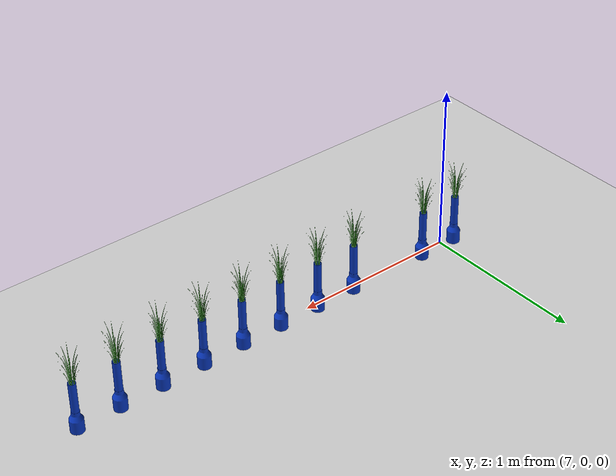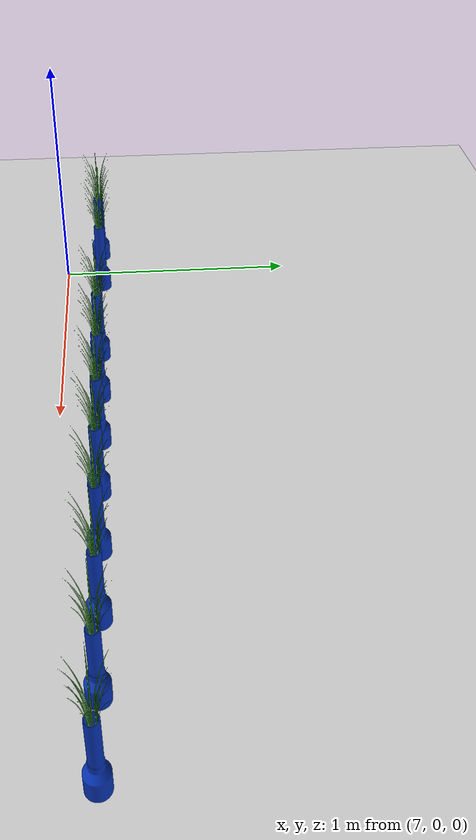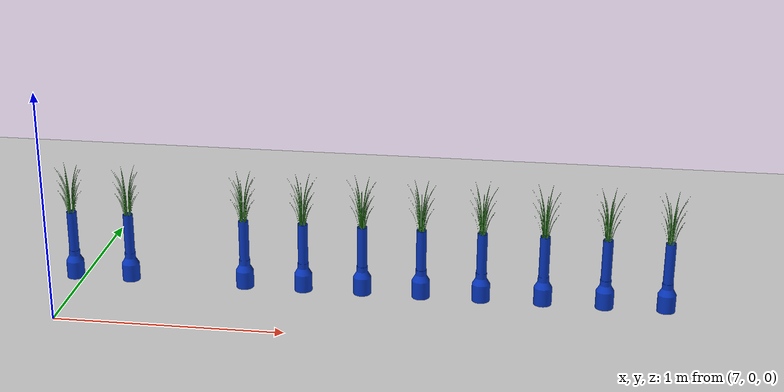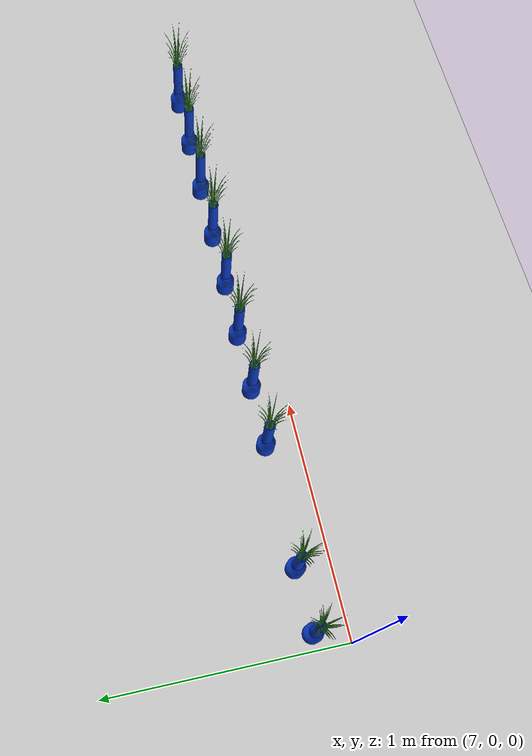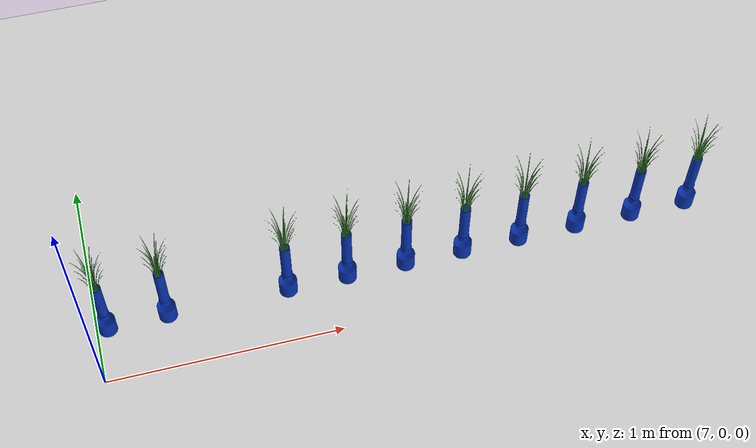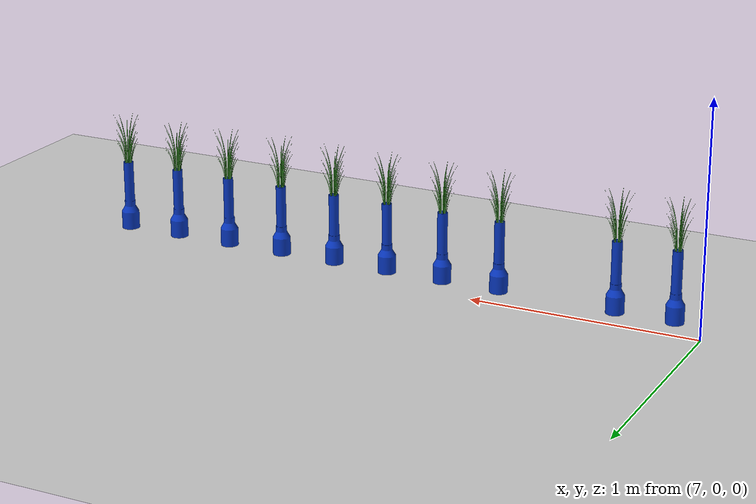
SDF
<sdf version="1.7">
 <world name="default">
  <model name="ground_plane">
   <static>1</static>
   <link name="link">
    <collision name="collision">
     <geometry><plane><normal>0 0 1</normal><size>100 100</size></plane></geometry>
     <surface>
      <contact><collide_bitmask>65535</collide_bitmask></contact>
      <friction><ode><mu>100</mu><mu2>50</mu2></ode></friction>
     </surface>
    </collision>
    <visual name="visual">
     <cast_shadows>0</cast_shadows>
     <geometry><plane><normal>0 0 1</normal><size>100 100</size></plane></geometry>
     <material>
      <script><uri>file://media/materials/scripts/gazebo.material</uri><name>Gazebo/Grey</name></script>
     </material>
    </visual>
   </link>
  </model>
  <model name="seed_blue">
   <link name="link_1">
    <inertial>
     <mass>1</mass>
     <inertia>
      <ixx>0.166667</ixx>
      <ixy>0</ixy>
      <ixz>0</ixz>
      <iyy>0.166667</iyy>
      <iyz>0</iyz>
      <izz>0.166667</izz>
     </inertia>
    </inertial>
    <visual name="visual">
     <geometry>
      <mesh>
       <uri>/home/entity014/abu2024_ws/src/abu_description/worlds/seed_blue.dae</uri>
       <scale>1 1 1</scale>
      </mesh>
     </geometry>
    </visual>
    <collision name="collision">
     <geometry>
      <mesh>
       <uri>/home/entity014/abu2024_ws/src/abu_description/worlds/seed_blue.dae</uri>
       <scale>1 1 1</scale>
      </mesh>
     </geometry>
     <surface>
      <friction>
       <ode><mu>1</mu><mu2>1</mu2><fdir1>0 0 0</fdir1><slip1>0</slip1><slip2>0</slip2></ode>
       <torsional>
        <coefficient>1</coefficient>
        <patch_radius>0</patch_radius>
        <surface_radius>0</surface_radius>
        <use_patch_radius>1</use_patch_radius>
        <ode><slip>0</slip></ode>
       </torsional>
      </friction>
      <bounce><restitution_coefficient>0</restitution_coefficient><threshold>1e+06</threshold></bounce>
      <contact>
       <collide_without_contact>0</collide_without_contact>
       <collide_without_contact_bitmask>1</collide_without_contact_bitmask>
       <collide_bitmask>1</collide_bitmask>
       <ode>
        <soft_cfm>0</soft_cfm>
        <soft_erp>0.2</soft_erp>
        <kp>1e+13</kp>
        <kd>1</kd>
        <max_vel>0.01</max_vel>
        <min_depth>0</min_depth>
       </ode>
       <bullet>
        <split_impulse>1</split_impulse>
        <split_impulse_penetration_threshold>-0.01</split_impulse_penetration_threshold>
        <soft_cfm>0</soft_cfm>
        <soft_erp>0.2</soft_erp>
        <kp>1e+13</kp>
        <kd>1</kd>
       </bullet>
      </contact>
     </surface>
    </collision>
   </link>
   <static>0</static>
   <pose>7.05811 0.163128 0.244369 6e-06 4e-06 0.000181</pose>
  </model>
  <model name="seed_blue_0">
   <link name="link_1">
    <inertial>
     <mass>1</mass>
     <inertia>
      <ixx>0.166667</ixx>
      <ixy>0</ixy>
      <ixz>0</ixz>
      <iyy>0.166667</iyy>
      <iyz>0</iyz>
      <izz>0.166667</izz>
     </inertia>
    </inertial>
    <visual name="visual">
     <geometry>
      <mesh>
       <uri>/home/entity014/abu2024_ws/src/abu_description/worlds/seed_blue.dae</uri>
       <scale>1 1 1</scale>
      </mesh>
     </geometry>
    </visual>
    <collision name="collision">
     <geometry>
      <mesh>
       <uri>/home/entity014/abu2024_ws/src/abu_description/worlds/seed_blue.dae</uri>
       <scale>1 1 1</scale>
      </mesh>
     </geometry>
     <surface>
      <friction>
       <ode><mu>1</mu><mu2>1</mu2><fdir1>0 0 0</fdir1><slip1>0</slip1><slip2>0</slip2></ode>
       <torsional>
        <coefficient>1</coefficient>
        <patch_radius>0</patch_radius>
        <surface_radius>0</surface_radius>
        <use_patch_radius>1</use_patch_radius>
        <ode><slip>0</slip></ode>
       </torsional>
      </friction>
      <bounce><restitution_coefficient>0</restitution_coefficient><threshold>1e+06</threshold></bounce>
      <contact>
       <collide_without_contact>0</collide_without_contact>
       <collide_without_contact_bitmask>1</collide_without_contact_bitmask>
       <collide_bitmask>1</collide_bitmask>
       <ode>
        <soft_cfm>0</soft_cfm>
        <soft_erp>0.2</soft_erp>
        <kp>1e+13</kp>
        <kd>1</kd>
        <max_vel>0.01</max_vel>
        <min_depth>0</min_depth>
       </ode>
       <bullet>
        <split_impulse>1</split_impulse>
        <split_impulse_penetration_threshold>-0.01</split_impulse_penetration_threshold>
        <soft_cfm>0</soft_cfm>
        <soft_erp>0.2</soft_erp>
        <kp>1e+13</kp>
        <kd>1</kd>
       </bullet>
      </contact>
     </surface>
    </collision>
   </link>
   <static>0</static>
   <pose>7.30361 0.167483 0.24437 1e-05 -1e-05 -0.016875</pose>
  </model>
  <model name="seed_blue_2">
   <link name="link_1">
    <inertial>
     <mass>1</mass>
     <inertia>
      <ixx>0.166667</ixx>
      <ixy>0</ixy>
      <ixz>0</ixz>
      <iyy>0.166667</iyy>
      <iyz>0</iyz>
      <izz>0.166667</izz>
     </inertia>
    </inertial>
    <visual name="visual">
     <geometry>
      <mesh>
       <uri>/home/entity014/abu2024_ws/src/abu_description/worlds/seed_blue.dae</uri>
       <scale>1 1 1</scale>
      </mesh>
     </geometry>
    </visual>
    <collision name="collision">
     <geometry>
      <mesh>
       <uri>/home/entity014/abu2024_ws/src/abu_description/worlds/seed_blue.dae</uri>
       <scale>1 1 1</scale>
      </mesh>
     </geometry>
     <surface>
      <friction>
       <ode><mu>1</mu><mu2>1</mu2><fdir1>0 0 0</fdir1><slip1>0</slip1><slip2>0</slip2></ode>
       <torsional>
        <coefficient>1</coefficient>
        <patch_radius>0</patch_radius>
        <surface_radius>0</surface_radius>
        <use_patch_radius>1</use_patch_radius>
        <ode><slip>0</slip></ode>
       </torsional>
      </friction>
      <bounce><restitution_coefficient>0</restitution_coefficient><threshold>1e+06</threshold></bounce>
      <contact>
       <collide_without_contact>0</collide_without_contact>
       <collide_without_contact_bitmask>1</collide_without_contact_bitmask>
       <collide_bitmask>1</collide_bitmask>
       <ode>
        <soft_cfm>0</soft_cfm>
        <soft_erp>0.2</soft_erp>
        <kp>1e+13</kp>
        <kd>1</kd>
        <max_vel>0.01</max_vel>
        <min_depth>0</min_depth>
       </ode>
       <bullet>
        <split_impulse>1</split_impulse>
        <split_impulse_penetration_threshold>-0.01</split_impulse_penetration_threshold>
        <soft_cfm>0</soft_cfm>
        <soft_erp>0.2</soft_erp>
        <kp>1e+13</kp>
        <kd>1</kd>
       </bullet>
      </contact>
     </surface>
    </collision>
   </link>
   <static>0</static>
   <pose>7.80373 0.163084 0.244369 4e-06 1e-06 -6.5e-05</pose>
  </model>
  <model name="seed_blue_3">
   <link name="link_1">
    <inertial>
     <mass>1</mass>
     <inertia>
      <ixx>0.166667</ixx>
      <ixy>0</ixy>
      <ixz>0</ixz>
      <iyy>0.166667</iyy>
      <iyz>0</iyz>
      <izz>0.166667</izz>
     </inertia>
    </inertial>
    <visual name="visual">
     <geometry>
      <mesh>
       <uri>/home/entity014/abu2024_ws/src/abu_description/worlds/seed_blue.dae</uri>
       <scale>1 1 1</scale>
      </mesh>
     </geometry>
    </visual>
    <collision name="collision">
     <geometry>
      <mesh>
       <uri>/home/entity014/abu2024_ws/src/abu_description/worlds/seed_blue.dae</uri>
       <scale>1 1 1</scale>
      </mesh>
     </geometry>
     <surface>
      <friction>
       <ode><mu>1</mu><mu2>1</mu2><fdir1>0 0 0</fdir1><slip1>0</slip1><slip2>0</slip2></ode>
       <torsional>
        <coefficient>1</coefficient>
        <patch_radius>0</patch_radius>
        <surface_radius>0</surface_radius>
        <use_patch_radius>1</use_patch_radius>
        <ode><slip>0</slip></ode>
       </torsional>
      </friction>
      <bounce><restitution_coefficient>0</restitution_coefficient><threshold>1e+06</threshold></bounce>
      <contact>
       <collide_without_contact>0</collide_without_contact>
       <collide_without_contact_bitmask>1</collide_without_contact_bitmask>
       <collide_bitmask>1</collide_bitmask>
       <ode>
        <soft_cfm>0</soft_cfm>
        <soft_erp>0.2</soft_erp>
        <kp>1e+13</kp>
        <kd>1</kd>
        <max_vel>0.01</max_vel>
        <min_depth>0</min_depth>
       </ode>
       <bullet>
        <split_impulse>1</split_impulse>
        <split_impulse_penetration_threshold>-0.01</split_impulse_penetration_threshold>
        <soft_cfm>0</soft_cfm>
        <soft_erp>0.2</soft_erp>
        <kp>1e+13</kp>
        <kd>1</kd>
       </bullet>
      </contact>
     </surface>
    </collision>
   </link>
   <static>0</static>
   <pose>8.05521 0.164025 0.244369 2e-06 -8e-06 7.7e-05</pose>
  </model>
  <model name="seed_blue_4">
   <link name="link_1">
    <inertial>
     <mass>1</mass>
     <inertia>
      <ixx>0.166667</ixx>
      <ixy>0</ixy>
      <ixz>0</ixz>
      <iyy>0.166667</iyy>
      <iyz>0</iyz>
      <izz>0.166667</izz>
     </inertia>
    </inertial>
    <visual name="visual">
     <geometry>
      <mesh>
       <uri>/home/entity014/abu2024_ws/src/abu_description/worlds/seed_blue.dae</uri>
       <scale>1 1 1</scale>
      </mesh>
     </geometry>
    </visual>
    <collision name="collision">
     <geometry>
      <mesh>
       <uri>/home/entity014/abu2024_ws/src/abu_description/worlds/seed_blue.dae</uri>
       <scale>1 1 1</scale>
      </mesh>
     </geometry>
     <surface>
      <friction>
       <ode><mu>1</mu><mu2>1</mu2><fdir1>0 0 0</fdir1><slip1>0</slip1><slip2>0</slip2></ode>
       <torsional>
        <coefficient>1</coefficient>
        <patch_radius>0</patch_radius>
        <surface_radius>0</surface_radius>
        <use_patch_radius>1</use_patch_radius>
        <ode><slip>0</slip></ode>
       </torsional>
      </friction>
      <bounce><restitution_coefficient>0</restitution_coefficient><threshold>1e+06</threshold></bounce>
      <contact>
       <collide_without_contact>0</collide_without_contact>
       <collide_without_contact_bitmask>1</collide_without_contact_bitmask>
       <collide_bitmask>1</collide_bitmask>
       <ode>
        <soft_cfm>0</soft_cfm>
        <soft_erp>0.2</soft_erp>
        <kp>1e+13</kp>
        <kd>1</kd>
        <max_vel>0.01</max_vel>
        <min_depth>0</min_depth>
       </ode>
       <bullet>
        <split_impulse>1</split_impulse>
        <split_impulse_penetration_threshold>-0.01</split_impulse_penetration_threshold>
        <soft_cfm>0</soft_cfm>
        <soft_erp>0.2</soft_erp>
        <kp>1e+13</kp>
        <kd>1</kd>
       </bullet>
      </contact>
     </surface>
    </collision>
   </link>
   <static>0</static>
   <pose>8.30615 0.165431 0.24437 -4e-06 -1.2e-05 -0.000523</pose>
  </model>
  <model name="seed_blue_5">
   <link name="link_1">
    <inertial>
     <mass>1</mass>
     <inertia>
      <ixx>0.166667</ixx>
      <ixy>0</ixy>
      <ixz>0</ixz>
      <iyy>0.166667</iyy>
      <iyz>0</iyz>
      <izz>0.166667</izz>
     </inertia>
    </inertial>
    <visual name="visual">
     <geometry>
      <mesh>
       <uri>/home/entity014/abu2024_ws/src/abu_description/worlds/seed_blue.dae</uri>
       <scale>1 1 1</scale>
      </mesh>
     </geometry>
    </visual>
    <collision name="collision">
     <geometry>
      <mesh>
       <uri>/home/entity014/abu2024_ws/src/abu_description/worlds/seed_blue.dae</uri>
       <scale>1 1 1</scale>
      </mesh>
     </geometry>
     <surface>
      <friction>
       <ode><mu>1</mu><mu2>1</mu2><fdir1>0 0 0</fdir1><slip1>0</slip1><slip2>0</slip2></ode>
       <torsional>
        <coefficient>1</coefficient>
        <patch_radius>0</patch_radius>
        <surface_radius>0</surface_radius>
        <use_patch_radius>1</use_patch_radius>
        <ode><slip>0</slip></ode>
       </torsional>
      </friction>
      <bounce><restitution_coefficient>0</restitution_coefficient><threshold>1e+06</threshold></bounce>
      <contact>
       <collide_without_contact>0</collide_without_contact>
       <collide_without_contact_bitmask>1</collide_without_contact_bitmask>
       <collide_bitmask>1</collide_bitmask>
       <ode>
        <soft_cfm>0</soft_cfm>
        <soft_erp>0.2</soft_erp>
        <kp>1e+13</kp>
        <kd>1</kd>
        <max_vel>0.01</max_vel>
        <min_depth>0</min_depth>
       </ode>
       <bullet>
        <split_impulse>1</split_impulse>
        <split_impulse_penetration_threshold>-0.01</split_impulse_penetration_threshold>
        <soft_cfm>0</soft_cfm>
        <soft_erp>0.2</soft_erp>
        <kp>1e+13</kp>
        <kd>1</kd>
       </bullet>
      </contact>
     </surface>
    </collision>
   </link>
   <static>0</static>
   <pose>8.5531 0.164074 0.244369 -9e-06 3e-06 6.8e-05</pose>
  </model>
  <model name="seed_blue_6">
   <link name="link_1">
    <inertial>
     <mass>1</mass>
     <inertia>
      <ixx>0.166667</ixx>
      <ixy>0</ixy>
      <ixz>0</ixz>
      <iyy>0.166667</iyy>
      <iyz>0</iyz>
      <izz>0.166667</izz>
     </inertia>
    </inertial>
    <visual name="visual">
     <geometry>
      <mesh>
       <uri>/home/entity014/abu2024_ws/src/abu_description/worlds/seed_blue.dae</uri>
       <scale>1 1 1</scale>
      </mesh>
     </geometry>
    </visual>
    <collision name="collision">
     <geometry>
      <mesh>
       <uri>/home/entity014/abu2024_ws/src/abu_description/worlds/seed_blue.dae</uri>
       <scale>1 1 1</scale>
      </mesh>
     </geometry>
     <surface>
      <friction>
       <ode><mu>1</mu><mu2>1</mu2><fdir1>0 0 0</fdir1><slip1>0</slip1><slip2>0</slip2></ode>
       <torsional>
        <coefficient>1</coefficient>
        <patch_radius>0</patch_radius>
        <surface_radius>0</surface_radius>
        <use_patch_radius>1</use_patch_radius>
        <ode><slip>0</slip></ode>
       </torsional>
      </friction>
      <bounce><restitution_coefficient>0</restitution_coefficient><threshold>1e+06</threshold></bounce>
      <contact>
       <collide_without_contact>0</collide_without_contact>
       <collide_without_contact_bitmask>1</collide_without_contact_bitmask>
       <collide_bitmask>1</collide_bitmask>
       <ode>
        <soft_cfm>0</soft_cfm>
        <soft_erp>0.2</soft_erp>
        <kp>1e+13</kp>
        <kd>1</kd>
        <max_vel>0.01</max_vel>
        <min_depth>0</min_depth>
       </ode>
       <bullet>
        <split_impulse>1</split_impulse>
        <split_impulse_penetration_threshold>-0.01</split_impulse_penetration_threshold>
        <soft_cfm>0</soft_cfm>
        <soft_erp>0.2</soft_erp>
        <kp>1e+13</kp>
        <kd>1</kd>
       </bullet>
      </contact>
     </surface>
    </collision>
   </link>
   <static>0</static>
   <pose>8.80363 0.166132 0.24437 -1e-05 1.1e-05 0.000953</pose>
  </model>
  <model name="seed_blue_7">
   <link name="link_1">
    <inertial>
     <mass>1</mass>
     <inertia>
      <ixx>0.166667</ixx>
      <ixy>0</ixy>
      <ixz>0</ixz>
      <iyy>0.166667</iyy>
      <iyz>0</iyz>
      <izz>0.166667</izz>
     </inertia>
    </inertial>
    <visual name="visual">
     <geometry>
      <mesh>
       <uri>/home/entity014/abu2024_ws/src/abu_description/worlds/seed_blue.dae</uri>
       <scale>1 1 1</scale>
      </mesh>
     </geometry>
    </visual>
    <collision name="collision">
     <geometry>
      <mesh>
       <uri>/home/entity014/abu2024_ws/src/abu_description/worlds/seed_blue.dae</uri>
       <scale>1 1 1</scale>
      </mesh>
     </geometry>
     <surface>
      <friction>
       <ode><mu>1</mu><mu2>1</mu2><fdir1>0 0 0</fdir1><slip1>0</slip1><slip2>0</slip2></ode>
       <torsional>
        <coefficient>1</coefficient>
        <patch_radius>0</patch_radius>
        <surface_radius>0</surface_radius>
        <use_patch_radius>1</use_patch_radius>
        <ode><slip>0</slip></ode>
       </torsional>
      </friction>
      <bounce><restitution_coefficient>0</restitution_coefficient><threshold>1e+06</threshold></bounce>
      <contact>
       <collide_without_contact>0</collide_without_contact>
       <collide_without_contact_bitmask>1</collide_without_contact_bitmask>
       <collide_bitmask>1</collide_bitmask>
       <ode>
        <soft_cfm>0</soft_cfm>
        <soft_erp>0.2</soft_erp>
        <kp>1e+13</kp>
        <kd>1</kd>
        <max_vel>0.01</max_vel>
        <min_depth>0</min_depth>
       </ode>
       <bullet>
        <split_impulse>1</split_impulse>
        <split_impulse_penetration_threshold>-0.01</split_impulse_penetration_threshold>
        <soft_cfm>0</soft_cfm>
        <soft_erp>0.2</soft_erp>
        <kp>1e+13</kp>
        <kd>1</kd>
       </bullet>
      </contact>
     </surface>
    </collision>
   </link>
   <static>0</static>
   <pose>9.05932 0.167278 0.24436 1e-06 -6e-06 -0.000183</pose>
  </model>
  <model name="seed_blue_8">
   <link name="link_1">
    <inertial>
     <mass>1</mass>
     <inertia>
      <ixx>0.166667</ixx>
      <ixy>0</ixy>
      <ixz>0</ixz>
      <iyy>0.166667</iyy>
      <iyz>0</iyz>
      <izz>0.166667</izz>
     </inertia>
    </inertial>
    <visual name="visual">
     <geometry>
      <mesh>
       <uri>/home/entity014/abu2024_ws/src/abu_description/worlds/seed_blue.dae</uri>
       <scale>1 1 1</scale>
      </mesh>
     </geometry>
    </visual>
    <collision name="collision">
     <geometry>
      <mesh>
       <uri>/home/entity014/abu2024_ws/src/abu_description/worlds/seed_blue.dae</uri>
       <scale>1 1 1</scale>
      </mesh>
     </geometry>
     <surface>
      <friction>
       <ode><mu>1</mu><mu2>1</mu2><fdir1>0 0 0</fdir1><slip1>0</slip1><slip2>0</slip2></ode>
       <torsional>
        <coefficient>1</coefficient>
        <patch_radius>0</patch_radius>
        <surface_radius>0</surface_radius>
        <use_patch_radius>1</use_patch_radius>
        <ode><slip>0</slip></ode>
       </torsional>
      </friction>
      <bounce><restitution_coefficient>0</restitution_coefficient><threshold>1e+06</threshold></bounce>
      <contact>
       <collide_without_contact>0</collide_without_contact>
       <collide_without_contact_bitmask>1</collide_without_contact_bitmask>
       <collide_bitmask>1</collide_bitmask>
       <ode>
        <soft_cfm>0</soft_cfm>
        <soft_erp>0.2</soft_erp>
        <kp>1e+13</kp>
        <kd>1</kd>
        <max_vel>0.01</max_vel>
        <min_depth>0</min_depth>
       </ode>
       <bullet>
        <split_impulse>1</split_impulse>
        <split_impulse_penetration_threshold>-0.01</split_impulse_penetration_threshold>
        <soft_cfm>0</soft_cfm>
        <soft_erp>0.2</soft_erp>
        <kp>1e+13</kp>
        <kd>1</kd>
       </bullet>
      </contact>
     </surface>
    </collision>
   </link>
   <static>0</static>
   <pose>9.31235 0.166827 0.24436 5e-06 1.4e-05 0.000116</pose>
  </model>
  <model name="seed_blue_9">
   <link name="link_1">
    <inertial>
     <mass>1</mass>
     <inertia>
      <ixx>0.166667</ixx>
      <ixy>0</ixy>
      <ixz>0</ixz>
      <iyy>0.166667</iyy>
      <iyz>0</iyz>
      <izz>0.166667</izz>
     </inertia>
    </inertial>
    <visual name="visual">
     <geometry>
      <mesh>
       <uri>/home/entity014/abu2024_ws/src/abu_description/worlds/seed_blue.dae</uri>
       <scale>1 1 1</scale>
      </mesh>
     </geometry>
    </visual>
    <collision name="collision">
     <geometry>
      <mesh>
       <uri>/home/entity014/abu2024_ws/src/abu_description/worlds/seed_blue.dae</uri>
       <scale>1 1 1</scale>
      </mesh>
     </geometry>
     <surface>
      <friction>
       <ode><mu>1</mu><mu2>1</mu2><fdir1>0 0 0</fdir1><slip1>0</slip1><slip2>0</slip2></ode>
       <torsional>
        <coefficient>1</coefficient>
        <patch_radius>0</patch_radius>
        <surface_radius>0</surface_radius>
        <use_patch_radius>1</use_patch_radius>
        <ode><slip>0</slip></ode>
       </torsional>
      </friction>
      <bounce><restitution_coefficient>0</restitution_coefficient><threshold>1e+06</threshold></bounce>
      <contact>
       <collide_without_contact>0</collide_without_contact>
       <collide_without_contact_bitmask>1</collide_without_contact_bitmask>
       <collide_bitmask>1</collide_bitmask>
       <ode>
        <soft_cfm>0</soft_cfm>
        <soft_erp>0.2</soft_erp>
        <kp>1e+13</kp>
        <kd>1</kd>
        <max_vel>0.01</max_vel>
        <min_depth>0</min_depth>
       </ode>
       <bullet>
        <split_impulse>1</split_impulse>
        <split_impulse_penetration_threshold>-0.01</split_impulse_penetration_threshold>
        <soft_cfm>0</soft_cfm>
        <soft_erp>0.2</soft_erp>
        <kp>1e+13</kp>
        <kd>1</kd>
       </bullet>
      </contact>
     </surface>
    </collision>
   </link>
   <static>0</static>
   <pose>9.56235 0.167683 0.244369 -0 -6e-06 -0.00027</pose>
  </model>
 </world>
</sdf>
